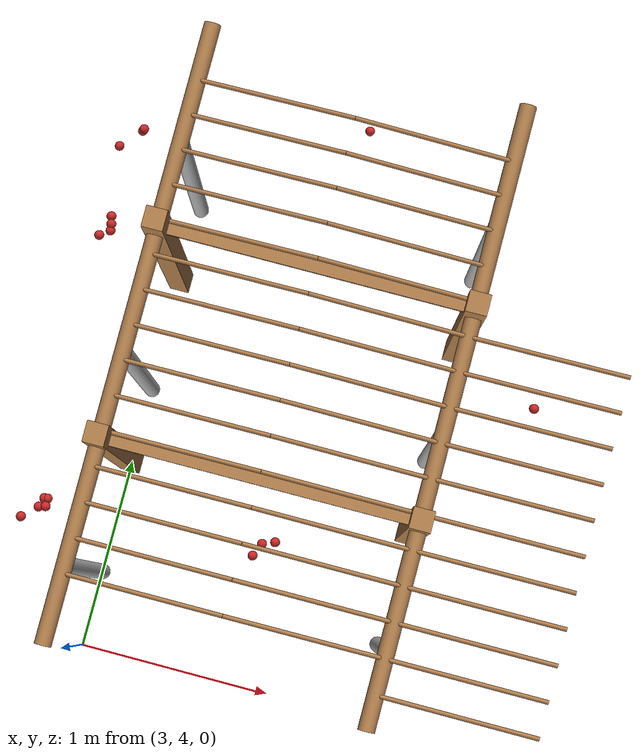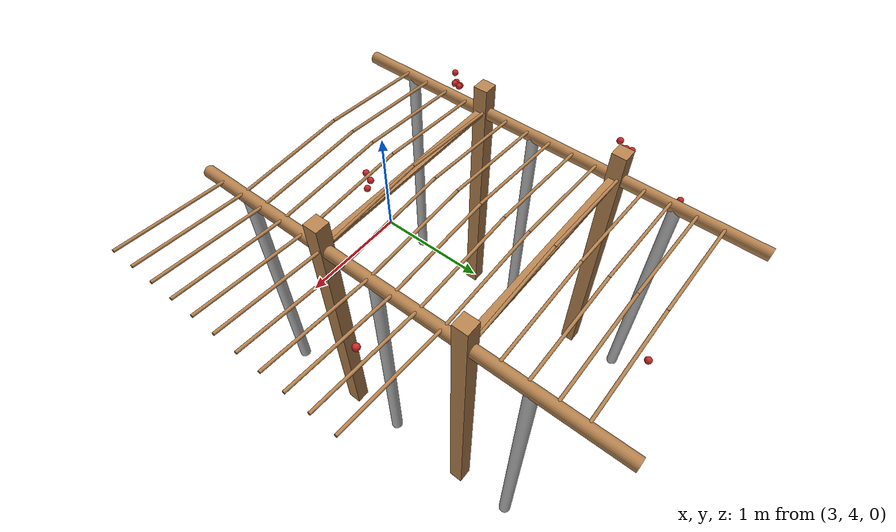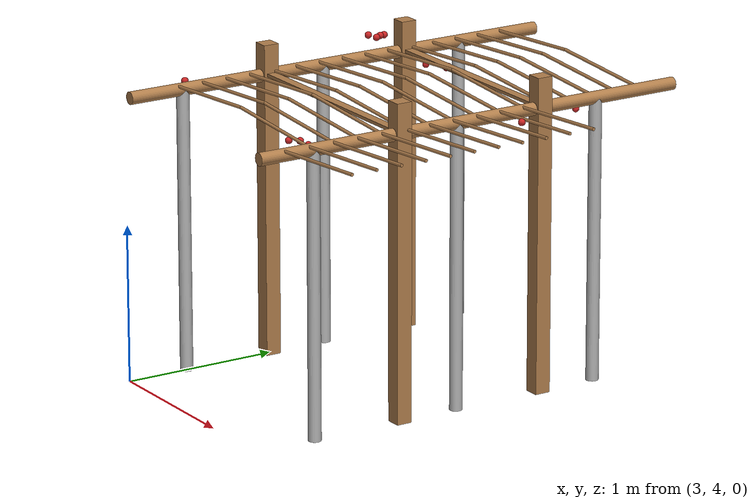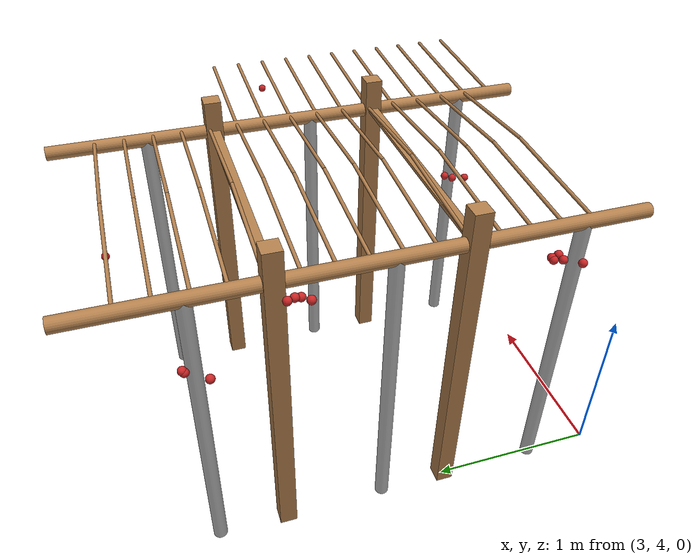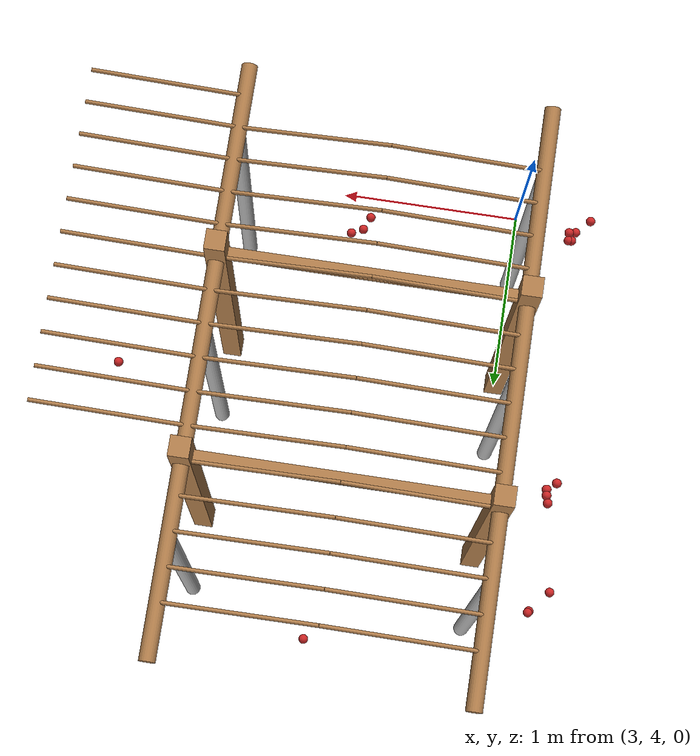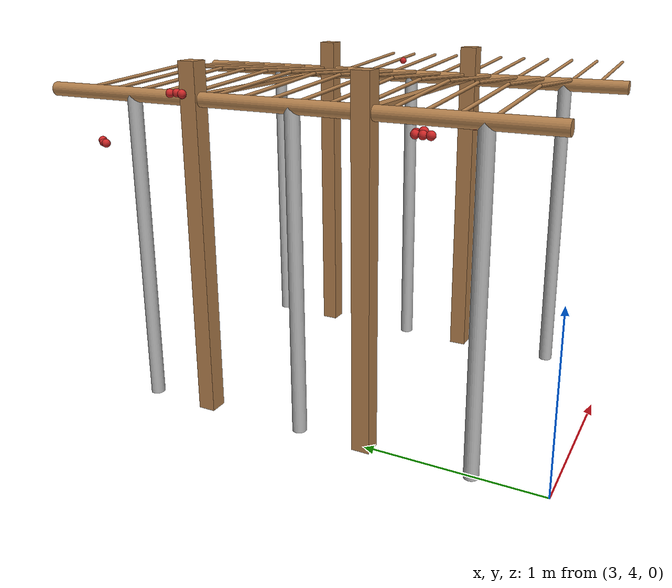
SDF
<sdf version="1.4">
 <model name="pergola">
  <include><name>post_27</name><pose>3.0 5.0 0 0 0 0</pose><uri>model://post</uri></include>
  <include><name>post_28</name><pose>3.0 6.0 0 0 0 0</pose><uri>model://post</uri></include>
  <include><name>post_38</name><pose>4.5 5.0 0 0 0 0</pose><uri>model://post</uri></include>
  <include><name>post_39</name><pose>4.5 6.0 0 0 0 0</pose><uri>model://post</uri></include>
  <link name="beam_27">
   <pose>3.75 5.0 1.81 0 0 0</pose>
   <collision name="collision"><geometry><box><size>1.5 0.06 0.02</size></box></geometry></collision>
   <visual name="visual">
    <geometry><box><size>1.5 0.06 0.02</size></box></geometry>
    <material><script><name>Gazebo/Wood</name></script></material>
   </visual>
   <inertial>
    <mass>5</mass>
    <inertia>
     <ixx>0.0016666666666666668</ixx>
     <ixy>0.0</ixy>
     <ixz>0.0</ixz>
     <iyy>0.9390000000000001</iyy>
     <iyz>0.0</iyz>
     <izz>0.9376666666666665</izz>
    </inertia>
   </inertial>
  </link>
  <link name="beam_28">
   <pose>3.75 6.0 1.81 0 0 0</pose>
   <collision name="collision"><geometry><box><size>1.5 0.06 0.02</size></box></geometry></collision>
   <visual name="visual">
    <geometry><box><size>1.5 0.06 0.02</size></box></geometry>
    <material><script><name>Gazebo/Wood</name></script></material>
   </visual>
   <inertial>
    <mass>5</mass>
    <inertia>
     <ixx>0.0016666666666666668</ixx>
     <ixy>0.0</ixy>
     <ixz>0.0</ixz>
     <iyy>0.9390000000000001</iyy>
     <iyz>0.0</iyz>
     <izz>0.9376666666666665</izz>
    </inertia>
   </inertial>
  </link>
  <include><name>tree_24</name><pose>3.0 4.4 0 0 0 0</pose><uri>model://tree_trunk</uri></include>
  <include><name>tree_25</name><pose>3.0 5.4 0 0 0 0</pose><uri>model://tree_trunk</uri></include>
  <include><name>tree_26</name><pose>3.0 6.4 0 0 0 0</pose><uri>model://tree_trunk</uri></include>
  <include><name>tree_34</name><pose>4.5 4.4 0 0 0 0</pose><uri>model://tree_trunk</uri></include>
  <include><name>tree_35</name><pose>4.5 5.4 0 0 0 0</pose><uri>model://tree_trunk</uri></include>
  <include><name>tree_36</name><pose>4.5 6.4 0 0 0 0</pose><uri>model://tree_trunk</uri></include>
  <link name="baseBranch_24">
   <pose>3.0 4.5 1.8 1.5707963267948966 0 0</pose>
   <collision name="collision">
    <geometry><cylinder><radius>0.04</radius><length>0.94</length></cylinder></geometry>
   </collision>
   <visual name="visual">
    <geometry><cylinder><radius>0.04</radius><length>0.94</length></cylinder></geometry>
    <material><script><name>Gazebo/WoodFloor</name></script></material>
   </visual>
   <inertial>
    <mass>10</mass>
    <inertia>
     <ixx>0.7403333333333334</ixx>
     <ixy>0.0</ixy>
     <ixz>0.0</ixz>
     <iyy>0.7403333333333334</iyy>
     <iyz>0.0</iyz>
     <izz>0.008</izz>
    </inertia>
   </inertial>
  </link>
  <link name="baseBranch_25">
   <pose>3.0 5.5 1.8 1.5707963267948966 0 0</pose>
   <collision name="collision">
    <geometry><cylinder><radius>0.04</radius><length>0.94</length></cylinder></geometry>
   </collision>
   <visual name="visual">
    <geometry><cylinder><radius>0.04</radius><length>0.94</length></cylinder></geometry>
    <material><script><name>Gazebo/WoodFloor</name></script></material>
   </visual>
   <inertial>
    <mass>10</mass>
    <inertia>
     <ixx>0.7403333333333334</ixx>
     <ixy>0.0</ixy>
     <ixz>0.0</ixz>
     <iyy>0.7403333333333334</iyy>
     <iyz>0.0</iyz>
     <izz>0.008</izz>
    </inertia>
   </inertial>
  </link>
  <link name="baseBranch_26">
   <pose>3.0 6.5 1.8 1.5707963267948966 0 0</pose>
   <collision name="collision">
    <geometry><cylinder><radius>0.04</radius><length>0.94</length></cylinder></geometry>
   </collision>
   <visual name="visual">
    <geometry><cylinder><radius>0.04</radius><length>0.94</length></cylinder></geometry>
    <material><script><name>Gazebo/WoodFloor</name></script></material>
   </visual>
   <inertial>
    <mass>10</mass>
    <inertia>
     <ixx>0.7403333333333334</ixx>
     <ixy>0.0</ixy>
     <ixz>0.0</ixz>
     <iyy>0.7403333333333334</iyy>
     <iyz>0.0</iyz>
     <izz>0.008</izz>
    </inertia>
   </inertial>
  </link>
  <link name="baseBranch_34">
   <pose>4.5 4.5 1.8 1.5707963267948966 0 0</pose>
   <collision name="collision">
    <geometry><cylinder><radius>0.04</radius><length>0.94</length></cylinder></geometry>
   </collision>
   <visual name="visual">
    <geometry><cylinder><radius>0.04</radius><length>0.94</length></cylinder></geometry>
    <material><script><name>Gazebo/WoodFloor</name></script></material>
   </visual>
   <inertial>
    <mass>10</mass>
    <inertia>
     <ixx>0.7403333333333334</ixx>
     <ixy>0.0</ixy>
     <ixz>0.0</ixz>
     <iyy>0.7403333333333334</iyy>
     <iyz>0.0</iyz>
     <izz>0.008</izz>
    </inertia>
   </inertial>
  </link>
  <link name="baseBranch_35">
   <pose>4.5 5.5 1.8 1.5707963267948966 0 0</pose>
   <collision name="collision">
    <geometry><cylinder><radius>0.04</radius><length>0.94</length></cylinder></geometry>
   </collision>
   <visual name="visual">
    <geometry><cylinder><radius>0.04</radius><length>0.94</length></cylinder></geometry>
    <material><script><name>Gazebo/WoodFloor</name></script></material>
   </visual>
   <inertial>
    <mass>10</mass>
    <inertia>
     <ixx>0.7403333333333334</ixx>
     <ixy>0.0</ixy>
     <ixz>0.0</ixz>
     <iyy>0.7403333333333334</iyy>
     <iyz>0.0</iyz>
     <izz>0.008</izz>
    </inertia>
   </inertial>
  </link>
  <link name="baseBranch_36">
   <pose>4.5 6.5 1.8 1.5707963267948966 0 0</pose>
   <collision name="collision">
    <geometry><cylinder><radius>0.04</radius><length>0.94</length></cylinder></geometry>
   </collision>
   <visual name="visual">
    <geometry><cylinder><radius>0.04</radius><length>0.94</length></cylinder></geometry>
    <material><script><name>Gazebo/WoodFloor</name></script></material>
   </visual>
   <inertial>
    <mass>10</mass>
    <inertia>
     <ixx>0.7403333333333334</ixx>
     <ixy>0.0</ixy>
     <ixz>0.0</ixz>
     <iyy>0.7403333333333334</iyy>
     <iyz>0.0</iyz>
     <izz>0.008</izz>
    </inertia>
   </inertial>
  </link>
  <link name="vine_292">
   <pose>3.375 4.363333333333333 1.85 0 1.5042281630190728 0</pose>
   <collision name="collision">
    <geometry><cylinder><radius>0.01</radius><length>0.7516648189186453</length></cylinder></geometry>
   </collision>
   <visual name="visual">
    <geometry><cylinder><radius>0.01</radius><length>0.7516648189186453</length></cylinder></geometry>
    <material><script><name>Gazebo/WoodFloor</name></script></material>
   </visual>
   <inertial>
    <mass>5</mass>
    <inertia>
     <ixx>0.23554166666666657</ixx>
     <ixy>0.0</ixy>
     <ixz>0.0</ixz>
     <iyy>0.23554166666666657</iyy>
     <iyz>0.0</iyz>
     <izz>0.00025</izz>
    </inertia>
   </inertial>
  </link>
  <link name="vine_293">
   <pose>4.125 4.363333333333333 1.85 0 -1.5042281630190728 0</pose>
   <collision name="collision">
    <geometry><cylinder><radius>0.01</radius><length>0.7516648189186453</length></cylinder></geometry>
   </collision>
   <visual name="visual">
    <geometry><cylinder><radius>0.01</radius><length>0.7516648189186453</length></cylinder></geometry>
    <material><script><name>Gazebo/WoodFloor</name></script></material>
   </visual>
   <inertial>
    <mass>5</mass>
    <inertia>
     <ixx>0.23554166666666657</ixx>
     <ixy>0.0</ixy>
     <ixz>0.0</ixz>
     <iyy>0.23554166666666657</iyy>
     <iyz>0.0</iyz>
     <izz>0.00025</izz>
    </inertia>
   </inertial>
  </link>
  <link name="vine_294">
   <pose>3.375 4.53 1.85 0 1.5042281630190728 0</pose>
   <collision name="collision">
    <geometry><cylinder><radius>0.01</radius><length>0.7516648189186453</length></cylinder></geometry>
   </collision>
   <visual name="visual">
    <geometry><cylinder><radius>0.01</radius><length>0.7516648189186453</length></cylinder></geometry>
    <material><script><name>Gazebo/WoodFloor</name></script></material>
   </visual>
   <inertial>
    <mass>5</mass>
    <inertia>
     <ixx>0.23554166666666657</ixx>
     <ixy>0.0</ixy>
     <ixz>0.0</ixz>
     <iyy>0.23554166666666657</iyy>
     <iyz>0.0</iyz>
     <izz>0.00025</izz>
    </inertia>
   </inertial>
  </link>
  <link name="vine_295">
   <pose>4.125 4.53 1.85 0 -1.5042281630190728 0</pose>
   <collision name="collision">
    <geometry><cylinder><radius>0.01</radius><length>0.7516648189186453</length></cylinder></geometry>
   </collision>
   <visual name="visual">
    <geometry><cylinder><radius>0.01</radius><length>0.7516648189186453</length></cylinder></geometry>
    <material><script><name>Gazebo/WoodFloor</name></script></material>
   </visual>
   <inertial>
    <mass>5</mass>
    <inertia>
     <ixx>0.23554166666666657</ixx>
     <ixy>0.0</ixy>
     <ixz>0.0</ixz>
     <iyy>0.23554166666666657</iyy>
     <iyz>0.0</iyz>
     <izz>0.00025</izz>
    </inertia>
   </inertial>
  </link>
  <link name="vine_296">
   <pose>3.375 4.696666666666666 1.85 0 1.5042281630190728 0</pose>
   <collision name="collision">
    <geometry><cylinder><radius>0.01</radius><length>0.7516648189186453</length></cylinder></geometry>
   </collision>
   <visual name="visual">
    <geometry><cylinder><radius>0.01</radius><length>0.7516648189186453</length></cylinder></geometry>
    <material><script><name>Gazebo/WoodFloor</name></script></material>
   </visual>
   <inertial>
    <mass>5</mass>
    <inertia>
     <ixx>0.23554166666666657</ixx>
     <ixy>0.0</ixy>
     <ixz>0.0</ixz>
     <iyy>0.23554166666666657</iyy>
     <iyz>0.0</iyz>
     <izz>0.00025</izz>
    </inertia>
   </inertial>
  </link>
  <link name="vine_297">
   <pose>4.125 4.696666666666666 1.85 0 -1.5042281630190728 0</pose>
   <collision name="collision">
    <geometry><cylinder><radius>0.01</radius><length>0.7516648189186453</length></cylinder></geometry>
   </collision>
   <visual name="visual">
    <geometry><cylinder><radius>0.01</radius><length>0.7516648189186453</length></cylinder></geometry>
    <material><script><name>Gazebo/WoodFloor</name></script></material>
   </visual>
   <inertial>
    <mass>5</mass>
    <inertia>
     <ixx>0.23554166666666657</ixx>
     <ixy>0.0</ixy>
     <ixz>0.0</ixz>
     <iyy>0.23554166666666657</iyy>
     <iyz>0.0</iyz>
     <izz>0.00025</izz>
    </inertia>
   </inertial>
  </link>
  <link name="vine_298">
   <pose>3.375 4.863333333333333 1.85 0 1.5042281630190728 0</pose>
   <collision name="collision">
    <geometry><cylinder><radius>0.01</radius><length>0.7516648189186453</length></cylinder></geometry>
   </collision>
   <visual name="visual">
    <geometry><cylinder><radius>0.01</radius><length>0.7516648189186453</length></cylinder></geometry>
    <material><script><name>Gazebo/WoodFloor</name></script></material>
   </visual>
   <inertial>
    <mass>5</mass>
    <inertia>
     <ixx>0.23554166666666657</ixx>
     <ixy>0.0</ixy>
     <ixz>0.0</ixz>
     <iyy>0.23554166666666657</iyy>
     <iyz>0.0</iyz>
     <izz>0.00025</izz>
    </inertia>
   </inertial>
  </link>
  <link name="vine_299">
   <pose>4.125 4.863333333333333 1.85 0 -1.5042281630190728 0</pose>
   <collision name="collision">
    <geometry><cylinder><radius>0.01</radius><length>0.7516648189186453</length></cylinder></geometry>
   </collision>
   <visual name="visual">
    <geometry><cylinder><radius>0.01</radius><length>0.7516648189186453</length></cylinder></geometry>
    <material><script><name>Gazebo/WoodFloor</name></script></material>
   </visual>
   <inertial>
    <mass>5</mass>
    <inertia>
     <ixx>0.23554166666666657</ixx>
     <ixy>0.0</ixy>
     <ixz>0.0</ixz>
     <iyy>0.23554166666666657</iyy>
     <iyz>0.0</iyz>
     <izz>0.00025</izz>
    </inertia>
   </inertial>
  </link>
  <link name="vine_300">
   <pose>3.375 5.03 1.85 0 1.5042281630190728 0</pose>
   <collision name="collision">
    <geometry><cylinder><radius>0.01</radius><length>0.7516648189186453</length></cylinder></geometry>
   </collision>
   <visual name="visual">
    <geometry><cylinder><radius>0.01</radius><length>0.7516648189186453</length></cylinder></geometry>
    <material><script><name>Gazebo/WoodFloor</name></script></material>
   </visual>
   <inertial>
    <mass>5</mass>
    <inertia>
     <ixx>0.23554166666666657</ixx>
     <ixy>0.0</ixy>
     <ixz>0.0</ixz>
     <iyy>0.23554166666666657</iyy>
     <iyz>0.0</iyz>
     <izz>0.00025</izz>
    </inertia>
   </inertial>
  </link>
  <link name="vine_301">
   <pose>4.125 5.03 1.85 0 -1.5042281630190728 0</pose>
   <collision name="collision">
    <geometry><cylinder><radius>0.01</radius><length>0.7516648189186453</length></cylinder></geometry>
   </collision>
   <visual name="visual">
    <geometry><cylinder><radius>0.01</radius><length>0.7516648189186453</length></cylinder></geometry>
    <material><script><name>Gazebo/WoodFloor</name></script></material>
   </visual>
   <inertial>
    <mass>5</mass>
    <inertia>
     <ixx>0.23554166666666657</ixx>
     <ixy>0.0</ixy>
     <ixz>0.0</ixz>
     <iyy>0.23554166666666657</iyy>
     <iyz>0.0</iyz>
     <izz>0.00025</izz>
    </inertia>
   </inertial>
  </link>
  <link name="vine_302">
   <pose>3.375 5.196666666666666 1.85 0 1.5042281630190728 0</pose>
   <collision name="collision">
    <geometry><cylinder><radius>0.01</radius><length>0.7516648189186453</length></cylinder></geometry>
   </collision>
   <visual name="visual">
    <geometry><cylinder><radius>0.01</radius><length>0.7516648189186453</length></cylinder></geometry>
    <material><script><name>Gazebo/WoodFloor</name></script></material>
   </visual>
   <inertial>
    <mass>5</mass>
    <inertia>
     <ixx>0.23554166666666657</ixx>
     <ixy>0.0</ixy>
     <ixz>0.0</ixz>
     <iyy>0.23554166666666657</iyy>
     <iyz>0.0</iyz>
     <izz>0.00025</izz>
    </inertia>
   </inertial>
  </link>
  <link name="vine_303">
   <pose>4.125 5.196666666666666 1.85 0 -1.5042281630190728 0</pose>
   <collision name="collision">
    <geometry><cylinder><radius>0.01</radius><length>0.7516648189186453</length></cylinder></geometry>
   </collision>
   <visual name="visual">
    <geometry><cylinder><radius>0.01</radius><length>0.7516648189186453</length></cylinder></geometry>
    <material><script><name>Gazebo/WoodFloor</name></script></material>
   </visual>
   <inertial>
    <mass>5</mass>
    <inertia>
     <ixx>0.23554166666666657</ixx>
     <ixy>0.0</ixy>
     <ixz>0.0</ixz>
     <iyy>0.23554166666666657</iyy>
     <iyz>0.0</iyz>
     <izz>0.00025</izz>
    </inertia>
   </inertial>
  </link>
  <link name="vine_304">
   <pose>3.375 5.363333333333333 1.85 0 1.5042281630190728 0</pose>
   <collision name="collision">
    <geometry><cylinder><radius>0.01</radius><length>0.7516648189186453</length></cylinder></geometry>
   </collision>
   <visual name="visual">
    <geometry><cylinder><radius>0.01</radius><length>0.7516648189186453</length></cylinder></geometry>
    <material><script><name>Gazebo/WoodFloor</name></script></material>
   </visual>
   <inertial>
    <mass>5</mass>
    <inertia>
     <ixx>0.23554166666666657</ixx>
     <ixy>0.0</ixy>
     <ixz>0.0</ixz>
     <iyy>0.23554166666666657</iyy>
     <iyz>0.0</iyz>
     <izz>0.00025</izz>
    </inertia>
   </inertial>
  </link>
  <link name="vine_305">
   <pose>4.125 5.363333333333333 1.85 0 -1.5042281630190728 0</pose>
   <collision name="collision">
    <geometry><cylinder><radius>0.01</radius><length>0.7516648189186453</length></cylinder></geometry>
   </collision>
   <visual name="visual">
    <geometry><cylinder><radius>0.01</radius><length>0.7516648189186453</length></cylinder></geometry>
    <material><script><name>Gazebo/WoodFloor</name></script></material>
   </visual>
   <inertial>
    <mass>5</mass>
    <inertia>
     <ixx>0.23554166666666657</ixx>
     <ixy>0.0</ixy>
     <ixz>0.0</ixz>
     <iyy>0.23554166666666657</iyy>
     <iyz>0.0</iyz>
     <izz>0.00025</izz>
    </inertia>
   </inertial>
  </link>
  <link name="vine_306">
   <pose>3.375 5.53 1.85 0 1.5042281630190728 0</pose>
   <collision name="collision">
    <geometry><cylinder><radius>0.01</radius><length>0.7516648189186453</length></cylinder></geometry>
   </collision>
   <visual name="visual">
    <geometry><cylinder><radius>0.01</radius><length>0.7516648189186453</length></cylinder></geometry>
    <material><script><name>Gazebo/WoodFloor</name></script></material>
   </visual>
   <inertial>
    <mass>5</mass>
    <inertia>
     <ixx>0.23554166666666657</ixx>
     <ixy>0.0</ixy>
     <ixz>0.0</ixz>
     <iyy>0.23554166666666657</iyy>
     <iyz>0.0</iyz>
     <izz>0.00025</izz>
    </inertia>
   </inertial>
  </link>
  <link name="vine_307">
   <pose>4.125 5.53 1.85 0 -1.5042281630190728 0</pose>
   <collision name="collision">
    <geometry><cylinder><radius>0.01</radius><length>0.7516648189186453</length></cylinder></geometry>
   </collision>
   <visual name="visual">
    <geometry><cylinder><radius>0.01</radius><length>0.7516648189186453</length></cylinder></geometry>
    <material><script><name>Gazebo/WoodFloor</name></script></material>
   </visual>
   <inertial>
    <mass>5</mass>
    <inertia>
     <ixx>0.23554166666666657</ixx>
     <ixy>0.0</ixy>
     <ixz>0.0</ixz>
     <iyy>0.23554166666666657</iyy>
     <iyz>0.0</iyz>
     <izz>0.00025</izz>
    </inertia>
   </inertial>
  </link>
  <link name="vine_308">
   <pose>3.375 5.696666666666666 1.85 0 1.5042281630190728 0</pose>
   <collision name="collision">
    <geometry><cylinder><radius>0.01</radius><length>0.7516648189186453</length></cylinder></geometry>
   </collision>
   <visual name="visual">
    <geometry><cylinder><radius>0.01</radius><length>0.7516648189186453</length></cylinder></geometry>
    <material><script><name>Gazebo/WoodFloor</name></script></material>
   </visual>
   <inertial>
    <mass>5</mass>
    <inertia>
     <ixx>0.23554166666666657</ixx>
     <ixy>0.0</ixy>
     <ixz>0.0</ixz>
     <iyy>0.23554166666666657</iyy>
     <iyz>0.0</iyz>
     <izz>0.00025</izz>
    </inertia>
   </inertial>
  </link>
  <link name="vine_309">
   <pose>4.125 5.696666666666666 1.85 0 -1.5042281630190728 0</pose>
   <collision name="collision">
    <geometry><cylinder><radius>0.01</radius><length>0.7516648189186453</length></cylinder></geometry>
   </collision>
   <visual name="visual">
    <geometry><cylinder><radius>0.01</radius><length>0.7516648189186453</length></cylinder></geometry>
    <material><script><name>Gazebo/WoodFloor</name></script></material>
   </visual>
   <inertial>
    <mass>5</mass>
    <inertia>
     <ixx>0.23554166666666657</ixx>
     <ixy>0.0</ixy>
     <ixz>0.0</ixz>
     <iyy>0.23554166666666657</iyy>
     <iyz>0.0</iyz>
     <izz>0.00025</izz>
    </inertia>
   </inertial>
  </link>
  <link name="vine_310">
   <pose>3.375 5.863333333333333 1.85 0 1.5042281630190728 0</pose>
   <collision name="collision">
    <geometry><cylinder><radius>0.01</radius><length>0.7516648189186453</length></cylinder></geometry>
   </collision>
   <visual name="visual">
    <geometry><cylinder><radius>0.01</radius><length>0.7516648189186453</length></cylinder></geometry>
    <material><script><name>Gazebo/WoodFloor</name></script></material>
   </visual>
   <inertial>
    <mass>5</mass>
    <inertia>
     <ixx>0.23554166666666657</ixx>
     <ixy>0.0</ixy>
     <ixz>0.0</ixz>
     <iyy>0.23554166666666657</iyy>
     <iyz>0.0</iyz>
     <izz>0.00025</izz>
    </inertia>
   </inertial>
  </link>
  <link name="vine_311">
   <pose>4.125 5.863333333333333 1.85 0 -1.5042281630190728 0</pose>
   <collision name="collision">
    <geometry><cylinder><radius>0.01</radius><length>0.7516648189186453</length></cylinder></geometry>
   </collision>
   <visual name="visual">
    <geometry><cylinder><radius>0.01</radius><length>0.7516648189186453</length></cylinder></geometry>
    <material><script><name>Gazebo/WoodFloor</name></script></material>
   </visual>
   <inertial>
    <mass>5</mass>
    <inertia>
     <ixx>0.23554166666666657</ixx>
     <ixy>0.0</ixy>
     <ixz>0.0</ixz>
     <iyy>0.23554166666666657</iyy>
     <iyz>0.0</iyz>
     <izz>0.00025</izz>
    </inertia>
   </inertial>
  </link>
  <link name="vine_312">
   <pose>3.375 6.03 1.85 0 1.5042281630190728 0</pose>
   <collision name="collision">
    <geometry><cylinder><radius>0.01</radius><length>0.7516648189186453</length></cylinder></geometry>
   </collision>
   <visual name="visual">
    <geometry><cylinder><radius>0.01</radius><length>0.7516648189186453</length></cylinder></geometry>
    <material><script><name>Gazebo/WoodFloor</name></script></material>
   </visual>
   <inertial>
    <mass>5</mass>
    <inertia>
     <ixx>0.23554166666666657</ixx>
     <ixy>0.0</ixy>
     <ixz>0.0</ixz>
     <iyy>0.23554166666666657</iyy>
     <iyz>0.0</iyz>
     <izz>0.00025</izz>
    </inertia>
   </inertial>
  </link>
  <link name="vine_313">
   <pose>4.125 6.03 1.85 0 -1.5042281630190728 0</pose>
   <collision name="collision">
    <geometry><cylinder><radius>0.01</radius><length>0.7516648189186453</length></cylinder></geometry>
   </collision>
   <visual name="visual">
    <geometry><cylinder><radius>0.01</radius><length>0.7516648189186453</length></cylinder></geometry>
    <material><script><name>Gazebo/WoodFloor</name></script></material>
   </visual>
   <inertial>
    <mass>5</mass>
    <inertia>
     <ixx>0.23554166666666657</ixx>
     <ixy>0.0</ixy>
     <ixz>0.0</ixz>
     <iyy>0.23554166666666657</iyy>
     <iyz>0.0</iyz>
     <izz>0.00025</izz>
    </inertia>
   </inertial>
  </link>
  <link name="vine_314">
   <pose>3.375 6.196666666666666 1.85 0 1.5042281630190728 0</pose>
   <collision name="collision">
    <geometry><cylinder><radius>0.01</radius><length>0.7516648189186453</length></cylinder></geometry>
   </collision>
   <visual name="visual">
    <geometry><cylinder><radius>0.01</radius><length>0.7516648189186453</length></cylinder></geometry>
    <material><script><name>Gazebo/WoodFloor</name></script></material>
   </visual>
   <inertial>
    <mass>5</mass>
    <inertia>
     <ixx>0.23554166666666657</ixx>
     <ixy>0.0</ixy>
     <ixz>0.0</ixz>
     <iyy>0.23554166666666657</iyy>
     <iyz>0.0</iyz>
     <izz>0.00025</izz>
    </inertia>
   </inertial>
  </link>
  <link name="vine_315">
   <pose>4.125 6.196666666666666 1.85 0 -1.5042281630190728 0</pose>
   <collision name="collision">
    <geometry><cylinder><radius>0.01</radius><length>0.7516648189186453</length></cylinder></geometry>
   </collision>
   <visual name="visual">
    <geometry><cylinder><radius>0.01</radius><length>0.7516648189186453</length></cylinder></geometry>
    <material><script><name>Gazebo/WoodFloor</name></script></material>
   </visual>
   <inertial>
    <mass>5</mass>
    <inertia>
     <ixx>0.23554166666666657</ixx>
     <ixy>0.0</ixy>
     <ixz>0.0</ixz>
     <iyy>0.23554166666666657</iyy>
     <iyz>0.0</iyz>
     <izz>0.00025</izz>
    </inertia>
   </inertial>
  </link>
  <link name="vine_316">
   <pose>3.375 6.363333333333333 1.85 0 1.5042281630190728 0</pose>
   <collision name="collision">
    <geometry><cylinder><radius>0.01</radius><length>0.7516648189186453</length></cylinder></geometry>
   </collision>
   <visual name="visual">
    <geometry><cylinder><radius>0.01</radius><length>0.7516648189186453</length></cylinder></geometry>
    <material><script><name>Gazebo/WoodFloor</name></script></material>
   </visual>
   <inertial>
    <mass>5</mass>
    <inertia>
     <ixx>0.23554166666666657</ixx>
     <ixy>0.0</ixy>
     <ixz>0.0</ixz>
     <iyy>0.23554166666666657</iyy>
     <iyz>0.0</iyz>
     <izz>0.00025</izz>
    </inertia>
   </inertial>
  </link>
  <link name="vine_317">
   <pose>4.125 6.363333333333333 1.85 0 -1.5042281630190728 0</pose>
   <collision name="collision">
    <geometry><cylinder><radius>0.01</radius><length>0.7516648189186453</length></cylinder></geometry>
   </collision>
   <visual name="visual">
    <geometry><cylinder><radius>0.01</radius><length>0.7516648189186453</length></cylinder></geometry>
    <material><script><name>Gazebo/WoodFloor</name></script></material>
   </visual>
   <inertial>
    <mass>5</mass>
    <inertia>
     <ixx>0.23554166666666657</ixx>
     <ixy>0.0</ixy>
     <ixz>0.0</ixz>
     <iyy>0.23554166666666657</iyy>
     <iyz>0.0</iyz>
     <izz>0.00025</izz>
    </inertia>
   </inertial>
  </link>
  <link name="vine_318">
   <pose>3.375 6.53 1.85 0 1.5042281630190728 0</pose>
   <collision name="collision">
    <geometry><cylinder><radius>0.01</radius><length>0.7516648189186453</length></cylinder></geometry>
   </collision>
   <visual name="visual">
    <geometry><cylinder><radius>0.01</radius><length>0.7516648189186453</length></cylinder></geometry>
    <material><script><name>Gazebo/WoodFloor</name></script></material>
   </visual>
   <inertial>
    <mass>5</mass>
    <inertia>
     <ixx>0.23554166666666657</ixx>
     <ixy>0.0</ixy>
     <ixz>0.0</ixz>
     <iyy>0.23554166666666657</iyy>
     <iyz>0.0</iyz>
     <izz>0.00025</izz>
    </inertia>
   </inertial>
  </link>
  <link name="vine_319">
   <pose>4.125 6.53 1.85 0 -1.5042281630190728 0</pose>
   <collision name="collision">
    <geometry><cylinder><radius>0.01</radius><length>0.7516648189186453</length></cylinder></geometry>
   </collision>
   <visual name="visual">
    <geometry><cylinder><radius>0.01</radius><length>0.7516648189186453</length></cylinder></geometry>
    <material><script><name>Gazebo/WoodFloor</name></script></material>
   </visual>
   <inertial>
    <mass>5</mass>
    <inertia>
     <ixx>0.23554166666666657</ixx>
     <ixy>0.0</ixy>
     <ixz>0.0</ixz>
     <iyy>0.23554166666666657</iyy>
     <iyz>0.0</iyz>
     <izz>0.00025</izz>
    </inertia>
   </inertial>
  </link>
  <link name="vine_320">
   <pose>3.375 6.696666666666666 1.85 0 1.5042281630190728 0</pose>
   <collision name="collision">
    <geometry><cylinder><radius>0.01</radius><length>0.7516648189186453</length></cylinder></geometry>
   </collision>
   <visual name="visual">
    <geometry><cylinder><radius>0.01</radius><length>0.7516648189186453</length></cylinder></geometry>
    <material><script><name>Gazebo/WoodFloor</name></script></material>
   </visual>
   <inertial>
    <mass>5</mass>
    <inertia>
     <ixx>0.23554166666666657</ixx>
     <ixy>0.0</ixy>
     <ixz>0.0</ixz>
     <iyy>0.23554166666666657</iyy>
     <iyz>0.0</iyz>
     <izz>0.00025</izz>
    </inertia>
   </inertial>
  </link>
  <link name="vine_321">
   <pose>4.125 6.696666666666666 1.85 0 -1.5042281630190728 0</pose>
   <collision name="collision">
    <geometry><cylinder><radius>0.01</radius><length>0.7516648189186453</length></cylinder></geometry>
   </collision>
   <visual name="visual">
    <geometry><cylinder><radius>0.01</radius><length>0.7516648189186453</length></cylinder></geometry>
    <material><script><name>Gazebo/WoodFloor</name></script></material>
   </visual>
   <inertial>
    <mass>5</mass>
    <inertia>
     <ixx>0.23554166666666657</ixx>
     <ixy>0.0</ixy>
     <ixz>0.0</ixz>
     <iyy>0.23554166666666657</iyy>
     <iyz>0.0</iyz>
     <izz>0.00025</izz>
    </inertia>
   </inertial>
  </link>
  <link name="vine_410">
   <pose>4.875 4.196666666666666 1.85 0 1.5042281630190728 0</pose>
   <collision name="collision">
    <geometry><cylinder><radius>0.01</radius><length>0.7516648189186453</length></cylinder></geometry>
   </collision>
   <visual name="visual">
    <geometry><cylinder><radius>0.01</radius><length>0.7516648189186453</length></cylinder></geometry>
    <material><script><name>Gazebo/WoodFloor</name></script></material>
   </visual>
   <inertial>
    <mass>5</mass>
    <inertia>
     <ixx>0.23554166666666657</ixx>
     <ixy>0.0</ixy>
     <ixz>0.0</ixz>
     <iyy>0.23554166666666657</iyy>
     <iyz>0.0</iyz>
     <izz>0.00025</izz>
    </inertia>
   </inertial>
  </link>
  <link name="vine_412">
   <pose>4.875 4.363333333333333 1.85 0 1.5042281630190728 0</pose>
   <collision name="collision">
    <geometry><cylinder><radius>0.01</radius><length>0.7516648189186453</length></cylinder></geometry>
   </collision>
   <visual name="visual">
    <geometry><cylinder><radius>0.01</radius><length>0.7516648189186453</length></cylinder></geometry>
    <material><script><name>Gazebo/WoodFloor</name></script></material>
   </visual>
   <inertial>
    <mass>5</mass>
    <inertia>
     <ixx>0.23554166666666657</ixx>
     <ixy>0.0</ixy>
     <ixz>0.0</ixz>
     <iyy>0.23554166666666657</iyy>
     <iyz>0.0</iyz>
     <izz>0.00025</izz>
    </inertia>
   </inertial>
  </link>
  <link name="vine_414">
   <pose>4.875 4.53 1.85 0 1.5042281630190728 0</pose>
   <collision name="collision">
    <geometry><cylinder><radius>0.01</radius><length>0.7516648189186453</length></cylinder></geometry>
   </collision>
   <visual name="visual">
    <geometry><cylinder><radius>0.01</radius><length>0.7516648189186453</length></cylinder></geometry>
    <material><script><name>Gazebo/WoodFloor</name></script></material>
   </visual>
   <inertial>
    <mass>5</mass>
    <inertia>
     <ixx>0.23554166666666657</ixx>
     <ixy>0.0</ixy>
     <ixz>0.0</ixz>
     <iyy>0.23554166666666657</iyy>
     <iyz>0.0</iyz>
     <izz>0.00025</izz>
    </inertia>
   </inertial>
  </link>
  <link name="vine_416">
   <pose>4.875 4.696666666666666 1.85 0 1.5042281630190728 0</pose>
   <collision name="collision">
    <geometry><cylinder><radius>0.01</radius><length>0.7516648189186453</length></cylinder></geometry>
   </collision>
   <visual name="visual">
    <geometry><cylinder><radius>0.01</radius><length>0.7516648189186453</length></cylinder></geometry>
    <material><script><name>Gazebo/WoodFloor</name></script></material>
   </visual>
   <inertial>
    <mass>5</mass>
    <inertia>
     <ixx>0.23554166666666657</ixx>
     <ixy>0.0</ixy>
     <ixz>0.0</ixz>
     <iyy>0.23554166666666657</iyy>
     <iyz>0.0</iyz>
     <izz>0.00025</izz>
    </inertia>
   </inertial>
  </link>
  <link name="vine_418">
   <pose>4.875 4.863333333333333 1.85 0 1.5042281630190728 0</pose>
   <collision name="collision">
    <geometry><cylinder><radius>0.01</radius><length>0.7516648189186453</length></cylinder></geometry>
   </collision>
   <visual name="visual">
    <geometry><cylinder><radius>0.01</radius><length>0.7516648189186453</length></cylinder></geometry>
    <material><script><name>Gazebo/WoodFloor</name></script></material>
   </visual>
   <inertial>
    <mass>5</mass>
    <inertia>
     <ixx>0.23554166666666657</ixx>
     <ixy>0.0</ixy>
     <ixz>0.0</ixz>
     <iyy>0.23554166666666657</iyy>
     <iyz>0.0</iyz>
     <izz>0.00025</izz>
    </inertia>
   </inertial>
  </link>
  <link name="vine_420">
   <pose>4.875 5.03 1.85 0 1.5042281630190728 0</pose>
   <collision name="collision">
    <geometry><cylinder><radius>0.01</radius><length>0.7516648189186453</length></cylinder></geometry>
   </collision>
   <visual name="visual">
    <geometry><cylinder><radius>0.01</radius><length>0.7516648189186453</length></cylinder></geometry>
    <material><script><name>Gazebo/WoodFloor</name></script></material>
   </visual>
   <inertial>
    <mass>5</mass>
    <inertia>
     <ixx>0.23554166666666657</ixx>
     <ixy>0.0</ixy>
     <ixz>0.0</ixz>
     <iyy>0.23554166666666657</iyy>
     <iyz>0.0</iyz>
     <izz>0.00025</izz>
    </inertia>
   </inertial>
  </link>
  <link name="vine_422">
   <pose>4.875 5.196666666666666 1.85 0 1.5042281630190728 0</pose>
   <collision name="collision">
    <geometry><cylinder><radius>0.01</radius><length>0.7516648189186453</length></cylinder></geometry>
   </collision>
   <visual name="visual">
    <geometry><cylinder><radius>0.01</radius><length>0.7516648189186453</length></cylinder></geometry>
    <material><script><name>Gazebo/WoodFloor</name></script></material>
   </visual>
   <inertial>
    <mass>5</mass>
    <inertia>
     <ixx>0.23554166666666657</ixx>
     <ixy>0.0</ixy>
     <ixz>0.0</ixz>
     <iyy>0.23554166666666657</iyy>
     <iyz>0.0</iyz>
     <izz>0.00025</izz>
    </inertia>
   </inertial>
  </link>
  <link name="vine_424">
   <pose>4.875 5.363333333333333 1.85 0 1.5042281630190728 0</pose>
   <collision name="collision">
    <geometry><cylinder><radius>0.01</radius><length>0.7516648189186453</length></cylinder></geometry>
   </collision>
   <visual name="visual">
    <geometry><cylinder><radius>0.01</radius><length>0.7516648189186453</length></cylinder></geometry>
    <material><script><name>Gazebo/WoodFloor</name></script></material>
   </visual>
   <inertial>
    <mass>5</mass>
    <inertia>
     <ixx>0.23554166666666657</ixx>
     <ixy>0.0</ixy>
     <ixz>0.0</ixz>
     <iyy>0.23554166666666657</iyy>
     <iyz>0.0</iyz>
     <izz>0.00025</izz>
    </inertia>
   </inertial>
  </link>
  <link name="vine_426">
   <pose>4.875 5.53 1.85 0 1.5042281630190728 0</pose>
   <collision name="collision">
    <geometry><cylinder><radius>0.01</radius><length>0.7516648189186453</length></cylinder></geometry>
   </collision>
   <visual name="visual">
    <geometry><cylinder><radius>0.01</radius><length>0.7516648189186453</length></cylinder></geometry>
    <material><script><name>Gazebo/WoodFloor</name></script></material>
   </visual>
   <inertial>
    <mass>5</mass>
    <inertia>
     <ixx>0.23554166666666657</ixx>
     <ixy>0.0</ixy>
     <ixz>0.0</ixz>
     <iyy>0.23554166666666657</iyy>
     <iyz>0.0</iyz>
     <izz>0.00025</izz>
    </inertia>
   </inertial>
  </link>
  <link name="vine_428">
   <pose>4.875 5.696666666666666 1.85 0 1.5042281630190728 0</pose>
   <collision name="collision">
    <geometry><cylinder><radius>0.01</radius><length>0.7516648189186453</length></cylinder></geometry>
   </collision>
   <visual name="visual">
    <geometry><cylinder><radius>0.01</radius><length>0.7516648189186453</length></cylinder></geometry>
    <material><script><name>Gazebo/WoodFloor</name></script></material>
   </visual>
   <inertial>
    <mass>5</mass>
    <inertia>
     <ixx>0.23554166666666657</ixx>
     <ixy>0.0</ixy>
     <ixz>0.0</ixz>
     <iyy>0.23554166666666657</iyy>
     <iyz>0.0</iyz>
     <izz>0.00025</izz>
    </inertia>
   </inertial>
  </link>
  <link name="vine_430">
   <pose>4.875 5.863333333333333 1.85 0 1.5042281630190728 0</pose>
   <collision name="collision">
    <geometry><cylinder><radius>0.01</radius><length>0.7516648189186453</length></cylinder></geometry>
   </collision>
   <visual name="visual">
    <geometry><cylinder><radius>0.01</radius><length>0.7516648189186453</length></cylinder></geometry>
    <material><script><name>Gazebo/WoodFloor</name></script></material>
   </visual>
   <inertial>
    <mass>5</mass>
    <inertia>
     <ixx>0.23554166666666657</ixx>
     <ixy>0.0</ixy>
     <ixz>0.0</ixz>
     <iyy>0.23554166666666657</iyy>
     <iyz>0.0</iyz>
     <izz>0.00025</izz>
    </inertia>
   </inertial>
  </link>
  <link name="fruit_15">
   <pose>4.864951519430785 5.61761559024071 1.8607458671108152 0 0 0</pose>
   <collision name="fruit_collision_15"><geometry><sphere><radius>0.022</radius></sphere></geometry></collision>
   <visual name="visual">
    <geometry><sphere><radius>0.022</radius></sphere></geometry>
    <material><script><name>Gazebo/Red</name></script></material>
   </visual>
   <inertial>
    <mass>0.05</mass>
    <inertia>
     <ixx>9.679999999999999e-06</ixx>
     <ixy>0.0</ixy>
     <ixz>0.0</ixz>
     <iyy>9.679999999999999e-06</iyy>
     <iyz>0.0</iyz>
     <izz>9.679999999999999e-06</izz>
    </inertia>
   </inertial>
   <sensor name="fruit_contact_15" type="contact">
    <contact><collision>fruit_collision_15</collision></contact>
   </sensor>
  </link>
  <link name="fruit_18">
   <pose>3.818463064858613 6.731569048002049 1.5077893050914737 0 0 0</pose>
   <collision name="fruit_collision_18"><geometry><sphere><radius>0.022</radius></sphere></geometry></collision>
   <visual name="visual">
    <geometry><sphere><radius>0.022</radius></sphere></geometry>
    <material><script><name>Gazebo/Red</name></script></material>
   </visual>
   <inertial>
    <mass>0.05</mass>
    <inertia>
     <ixx>9.679999999999999e-06</ixx>
     <ixy>0.0</ixy>
     <ixz>0.0</ixz>
     <iyy>9.679999999999999e-06</iyy>
     <iyz>0.0</iyz>
     <izz>9.679999999999999e-06</izz>
    </inertia>
   </inertial>
   <sensor name="fruit_contact_18" type="contact">
    <contact><collision>fruit_collision_18</collision></contact>
   </sensor>
  </link>
  <link name="fruit_21">
   <pose>2.7054969532832835 6.349606885421082 1.5853107057405085 0 0 0</pose>
   <collision name="fruit_collision_21"><geometry><sphere><radius>0.022</radius></sphere></geometry></collision>
   <visual name="visual">
    <geometry><sphere><radius>0.022</radius></sphere></geometry>
    <material><script><name>Gazebo/Red</name></script></material>
   </visual>
   <inertial>
    <mass>0.05</mass>
    <inertia>
     <ixx>9.679999999999999e-06</ixx>
     <ixy>0.0</ixy>
     <ixz>0.0</ixz>
     <iyy>9.679999999999999e-06</iyy>
     <iyz>0.0</iyz>
     <izz>9.679999999999999e-06</izz>
    </inertia>
   </inertial>
   <sensor name="fruit_contact_21" type="contact">
    <contact><collision>fruit_collision_21</collision></contact>
   </sensor>
  </link>
  <link name="fruit_33">
   <pose>3.8018392228500497 4.660459704881243 1.6367134541606239 0 0 0</pose>
   <collision name="fruit_collision_33"><geometry><sphere><radius>0.022</radius></sphere></geometry></collision>
   <visual name="visual">
    <geometry><sphere><radius>0.022</radius></sphere></geometry>
    <material><script><name>Gazebo/Red</name></script></material>
   </visual>
   <inertial>
    <mass>0.05</mass>
    <inertia>
     <ixx>9.679999999999999e-06</ixx>
     <ixy>0.0</ixy>
     <ixz>0.0</ixz>
     <iyy>9.679999999999999e-06</iyy>
     <iyz>0.0</iyz>
     <izz>9.679999999999999e-06</izz>
    </inertia>
   </inertial>
   <sensor name="fruit_contact_33" type="contact">
    <contact><collision>fruit_collision_33</collision></contact>
   </sensor>
  </link>
  <link name="fruit_88">
   <pose>2.747074297993135 4.5628951242332425 1.765698778480445 0 0 0</pose>
   <collision name="fruit_collision_88"><geometry><sphere><radius>0.022</radius></sphere></geometry></collision>
   <visual name="visual">
    <geometry><sphere><radius>0.022</radius></sphere></geometry>
    <material><script><name>Gazebo/Red</name></script></material>
   </visual>
   <inertial>
    <mass>0.05</mass>
    <inertia>
     <ixx>9.679999999999999e-06</ixx>
     <ixy>0.0</ixy>
     <ixz>0.0</ixz>
     <iyy>9.679999999999999e-06</iyy>
     <iyz>0.0</iyz>
     <izz>9.679999999999999e-06</izz>
    </inertia>
   </inertial>
   <sensor name="fruit_contact_88" type="contact">
    <contact><collision>fruit_collision_88</collision></contact>
   </sensor>
  </link>
  <link name="fruit_100">
   <pose>2.76272603718153 5.882103341119827 1.8608963416052873 0 0 0</pose>
   <collision name="fruit_collision_100"><geometry><sphere><radius>0.022</radius></sphere></geometry></collision>
   <visual name="visual">
    <geometry><sphere><radius>0.022</radius></sphere></geometry>
    <material><script><name>Gazebo/Red</name></script></material>
   </visual>
   <inertial>
    <mass>0.05</mass>
    <inertia>
     <ixx>9.679999999999999e-06</ixx>
     <ixy>0.0</ixy>
     <ixz>0.0</ixz>
     <iyy>9.679999999999999e-06</iyy>
     <iyz>0.0</iyz>
     <izz>9.679999999999999e-06</izz>
    </inertia>
   </inertial>
   <sensor name="fruit_contact_100" type="contact">
    <contact><collision>fruit_collision_100</collision></contact>
   </sensor>
  </link>
  <link name="fruit_119">
   <pose>2.8024093839423143 5.944980857193501 1.8576061796698695 0 0 0</pose>
   <collision name="fruit_collision_119"><geometry><sphere><radius>0.022</radius></sphere></geometry></collision>
   <visual name="visual">
    <geometry><sphere><radius>0.022</radius></sphere></geometry>
    <material><script><name>Gazebo/Red</name></script></material>
   </visual>
   <inertial>
    <mass>0.05</mass>
    <inertia>
     <ixx>9.679999999999999e-06</ixx>
     <ixy>0.0</ixy>
     <ixz>0.0</ixz>
     <iyy>9.679999999999999e-06</iyy>
     <iyz>0.0</iyz>
     <izz>9.679999999999999e-06</izz>
    </inertia>
   </inertial>
   <sensor name="fruit_contact_119" type="contact">
    <contact><collision>fruit_collision_119</collision></contact>
   </sensor>
  </link>
  <link name="fruit_130">
   <pose>2.8255103267538395 4.669066037808488 1.7502598265296923 0 0 0</pose>
   <collision name="fruit_collision_130"><geometry><sphere><radius>0.022</radius></sphere></geometry></collision>
   <visual name="visual">
    <geometry><sphere><radius>0.022</radius></sphere></geometry>
    <material><script><name>Gazebo/Red</name></script></material>
   </visual>
   <inertial>
    <mass>0.05</mass>
    <inertia>
     <ixx>9.679999999999999e-06</ixx>
     <ixy>0.0</ixy>
     <ixz>0.0</ixz>
     <iyy>9.679999999999999e-06</iyy>
     <iyz>0.0</iyz>
     <izz>9.679999999999999e-06</izz>
    </inertia>
   </inertial>
   <sensor name="fruit_contact_130" type="contact">
    <contact><collision>fruit_collision_130</collision></contact>
   </sensor>
  </link>
  <link name="fruit_133">
   <pose>3.829588881395625 4.723735065274329 1.629970295075716 0 0 0</pose>
   <collision name="fruit_collision_133"><geometry><sphere><radius>0.022</radius></sphere></geometry></collision>
   <visual name="visual">
    <geometry><sphere><radius>0.022</radius></sphere></geometry>
    <material><script><name>Gazebo/Red</name></script></material>
   </visual>
   <inertial>
    <mass>0.05</mass>
    <inertia>
     <ixx>9.679999999999999e-06</ixx>
     <ixy>0.0</ixy>
     <ixz>0.0</ixz>
     <iyy>9.679999999999999e-06</iyy>
     <iyz>0.0</iyz>
     <izz>9.679999999999999e-06</izz>
    </inertia>
   </inertial>
   <sensor name="fruit_contact_133" type="contact">
    <contact><collision>fruit_collision_133</collision></contact>
   </sensor>
  </link>
  <link name="fruit_158">
   <pose>2.789918776300602 6.449391069644852 1.5683968909799326 0 0 0</pose>
   <collision name="fruit_collision_158"><geometry><sphere><radius>0.022</radius></sphere></geometry></collision>
   <visual name="visual">
    <geometry><sphere><radius>0.022</radius></sphere></geometry>
    <material><script><name>Gazebo/Red</name></script></material>
   </visual>
   <inertial>
    <mass>0.05</mass>
    <inertia>
     <ixx>9.679999999999999e-06</ixx>
     <ixy>0.0</ixy>
     <ixz>0.0</ixz>
     <iyy>9.679999999999999e-06</iyy>
     <iyz>0.0</iyz>
     <izz>9.679999999999999e-06</izz>
    </inertia>
   </inertial>
   <sensor name="fruit_contact_158" type="contact">
    <contact><collision>fruit_collision_158</collision></contact>
   </sensor>
  </link>
  <link name="fruit_162">
   <pose>2.7928297579899612 5.980223558971619 1.8549977826244284 0 0 0</pose>
   <collision name="fruit_collision_162"><geometry><sphere><radius>0.022</radius></sphere></geometry></collision>
   <visual name="visual">
    <geometry><sphere><radius>0.022</radius></sphere></geometry>
    <material><script><name>Gazebo/Red</name></script></material>
   </visual>
   <inertial>
    <mass>0.05</mass>
    <inertia>
     <ixx>9.679999999999999e-06</ixx>
     <ixy>0.0</ixy>
     <ixz>0.0</ixz>
     <iyy>9.679999999999999e-06</iyy>
     <iyz>0.0</iyz>
     <izz>9.679999999999999e-06</izz>
    </inertia>
   </inertial>
   <sensor name="fruit_contact_162" type="contact">
    <contact><collision>fruit_collision_162</collision></contact>
   </sensor>
  </link>
  <link name="fruit_186">
   <pose>2.805300849407308 5.9159851401519665 1.8506390244709883 0 0 0</pose>
   <collision name="fruit_collision_186"><geometry><sphere><radius>0.022</radius></sphere></geometry></collision>
   <visual name="visual">
    <geometry><sphere><radius>0.022</radius></sphere></geometry>
    <material><script><name>Gazebo/Red</name></script></material>
   </visual>
   <inertial>
    <mass>0.05</mass>
    <inertia>
     <ixx>9.679999999999999e-06</ixx>
     <ixy>0.0</ixy>
     <ixz>0.0</ixz>
     <iyy>9.679999999999999e-06</iyy>
     <iyz>0.0</iyz>
     <izz>9.679999999999999e-06</izz>
    </inertia>
   </inertial>
   <sensor name="fruit_contact_186" type="contact">
    <contact><collision>fruit_collision_186</collision></contact>
   </sensor>
  </link>
  <link name="fruit_217">
   <pose>3.885215086217719 4.746048037268593 1.6151731127590938 0 0 0</pose>
   <collision name="fruit_collision_217"><geometry><sphere><radius>0.022</radius></sphere></geometry></collision>
   <visual name="visual">
    <geometry><sphere><radius>0.022</radius></sphere></geometry>
    <material><script><name>Gazebo/Red</name></script></material>
   </visual>
   <inertial>
    <mass>0.05</mass>
    <inertia>
     <ixx>9.679999999999999e-06</ixx>
     <ixy>0.0</ixy>
     <ixz>0.0</ixz>
     <iyy>9.679999999999999e-06</iyy>
     <iyz>0.0</iyz>
     <izz>9.679999999999999e-06</izz>
    </inertia>
   </inertial>
   <sensor name="fruit_contact_217" type="contact">
    <contact><collision>fruit_collision_217</collision></contact>
   </sensor>
  </link>
  <link name="fruit_246">
   <pose>2.840820062083808 4.670861745408302 1.7540262198068362 0 0 0</pose>
   <collision name="fruit_collision_246"><geometry><sphere><radius>0.022</radius></sphere></geometry></collision>
   <visual name="visual">
    <geometry><sphere><radius>0.022</radius></sphere></geometry>
    <material><script><name>Gazebo/Red</name></script></material>
   </visual>
   <inertial>
    <mass>0.05</mass>
    <inertia>
     <ixx>9.679999999999999e-06</ixx>
     <ixy>0.0</ixy>
     <ixz>0.0</ixz>
     <iyy>9.679999999999999e-06</iyy>
     <iyz>0.0</iyz>
     <izz>9.679999999999999e-06</izz>
    </inertia>
   </inertial>
   <sensor name="fruit_contact_246" type="contact">
    <contact><collision>fruit_collision_246</collision></contact>
   </sensor>
  </link>
  <link name="fruit_398">
   <pose>2.7944590413730364 6.457595507041576 1.5769998807109409 0 0 0</pose>
   <collision name="fruit_collision_398"><geometry><sphere><radius>0.022</radius></sphere></geometry></collision>
   <visual name="visual">
    <geometry><sphere><radius>0.022</radius></sphere></geometry>
    <material><script><name>Gazebo/Red</name></script></material>
   </visual>
   <inertial>
    <mass>0.05</mass>
    <inertia>
     <ixx>9.679999999999999e-06</ixx>
     <ixy>0.0</ixy>
     <ixz>0.0</ixz>
     <iyy>9.679999999999999e-06</iyy>
     <iyz>0.0</iyz>
     <izz>9.679999999999999e-06</izz>
    </inertia>
   </inertial>
   <sensor name="fruit_contact_398" type="contact">
    <contact><collision>fruit_collision_398</collision></contact>
   </sensor>
  </link>
  <link name="fruit_419">
   <pose>2.8428009139174186 4.634885110689264 1.7626956344096718 0 0 0</pose>
   <collision name="fruit_collision_419"><geometry><sphere><radius>0.022</radius></sphere></geometry></collision>
   <visual name="visual">
    <geometry><sphere><radius>0.022</radius></sphere></geometry>
    <material><script><name>Gazebo/Red</name></script></material>
   </visual>
   <inertial>
    <mass>0.05</mass>
    <inertia>
     <ixx>9.679999999999999e-06</ixx>
     <ixy>0.0</ixy>
     <ixz>0.0</ixz>
     <iyy>9.679999999999999e-06</iyy>
     <iyz>0.0</iyz>
     <izz>9.679999999999999e-06</izz>
    </inertia>
   </inertial>
   <sensor name="fruit_contact_419" type="contact">
    <contact><collision>fruit_collision_419</collision></contact>
   </sensor>
  </link>
  <link name="fruit_494">
   <pose>2.8109838480045304 4.625831153663724 1.7524241732778574 0 0 0</pose>
   <collision name="fruit_collision_494"><geometry><sphere><radius>0.022</radius></sphere></geometry></collision>
   <visual name="visual">
    <geometry><sphere><radius>0.022</radius></sphere></geometry>
    <material><script><name>Gazebo/Red</name></script></material>
   </visual>
   <inertial>
    <mass>0.05</mass>
    <inertia>
     <ixx>9.679999999999999e-06</ixx>
     <ixy>0.0</ixy>
     <ixz>0.0</ixz>
     <iyy>9.679999999999999e-06</iyy>
     <iyz>0.0</iyz>
     <izz>9.679999999999999e-06</izz>
    </inertia>
   </inertial>
   <sensor name="fruit_contact_494" type="contact">
    <contact><collision>fruit_collision_494</collision></contact>
   </sensor>
  </link>
 </model>
</sdf>
